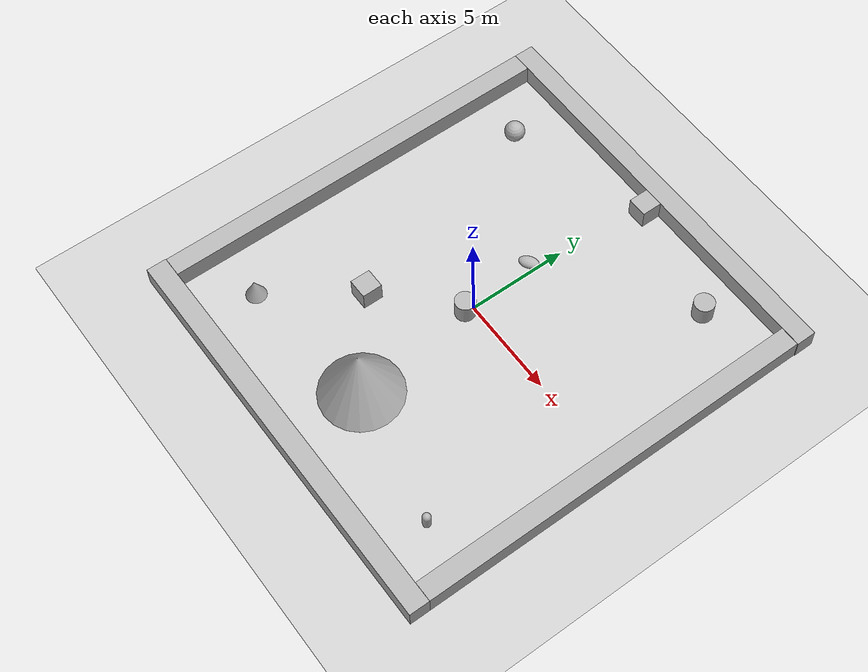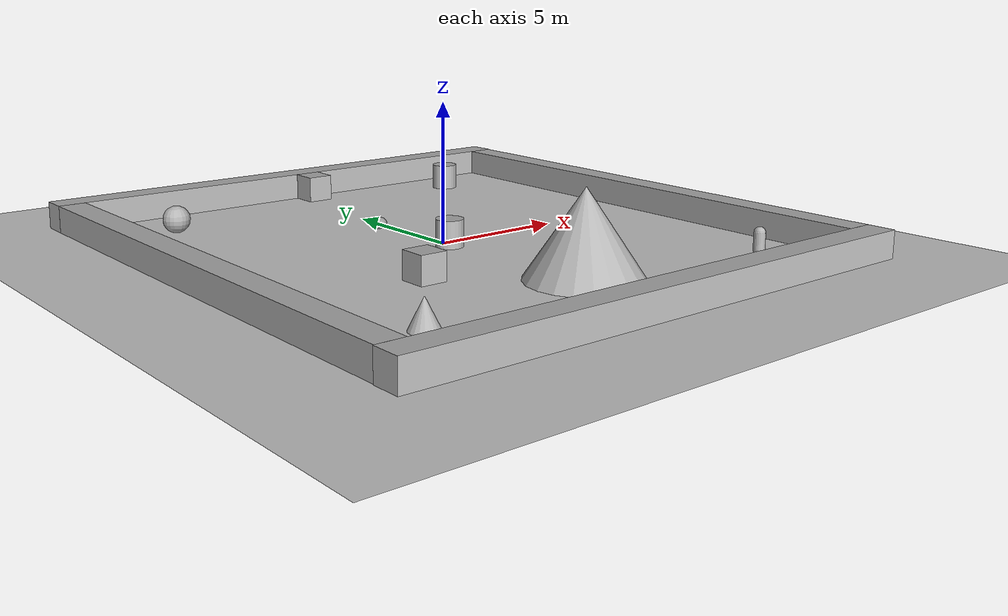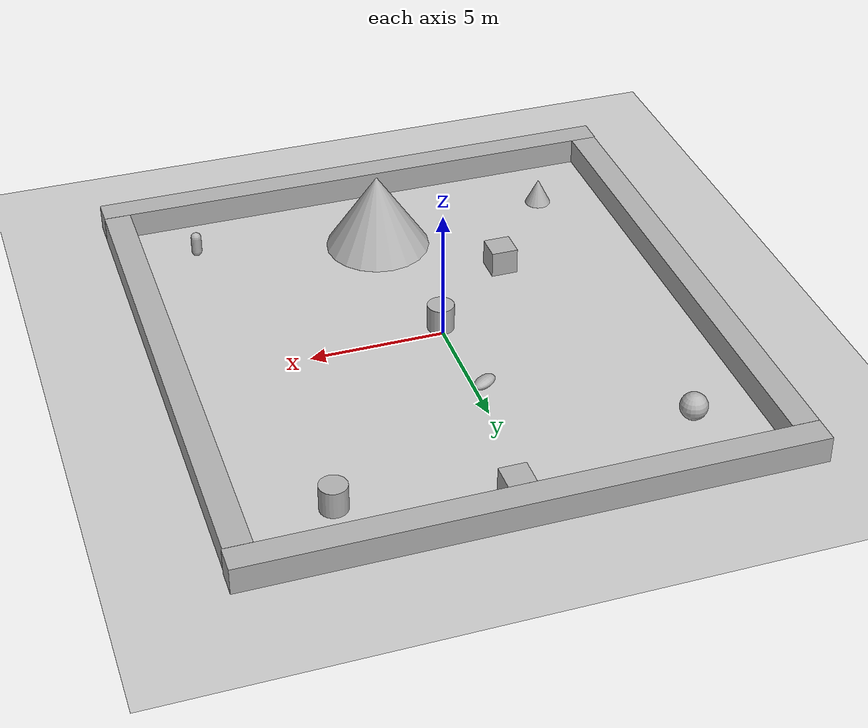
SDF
<sdf version="1.10">
 <world name="empty">
  <physics name="1ms" type="ignored">
   <max_step_size>0.001</max_step_size>
   <real_time_factor>1</real_time_factor>
   <real_time_update_rate>1000</real_time_update_rate>
  </physics>
  <plugin name="gz::sim::systems::Physics" filename="gz-sim-physics-system"/>
  <plugin name="gz::sim::systems::UserCommands" filename="gz-sim-user-commands-system"/>
  <plugin name="gz::sim::systems::SceneBroadcaster" filename="gz-sim-scene-broadcaster-system"/>
  <plugin name="gz::sim::systems::Contact" filename="gz-sim-contact-system"/>
  <gravity>0 0 -9.8000000000000007</gravity>
  <magnetic_field>5.5644999999999998e-06 2.2875799999999999e-05 -4.2388400000000002e-05</magnetic_field>
  <atmosphere type="adiabatic"/>
  <scene>
   <ambient>0.400000006 0.400000006 0.400000006 1</ambient>
   <background>0.699999988 0.699999988 0.699999988 1</background>
   <shadows>true</shadows>
  </scene>
  <model name="ground_plane">
   <static>true</static>
   <link name="link">
    <collision name="collision">
     <geometry><plane><normal>0 0 1</normal><size>100 100</size></plane></geometry>
    </collision>
    <visual name="visual">
     <geometry><plane><normal>0 0 1</normal><size>100 100</size></plane></geometry>
     <material>
      <ambient>0.800000012 0.800000012 0.800000012 1</ambient>
      <diffuse>0.800000012 0.800000012 0.800000012 1</diffuse>
      <specular>0.800000012 0.800000012 0.800000012 1</specular>
     </material>
    </visual>
    <inertial>
     <mass>1</mass>
     <inertia><ixx>1</ixx><ixy>0</ixy><ixz>0</ixz><iyy>1</iyy><iyz>0</iyz><izz>1</izz></inertia>
    </inertial>
   </link>
  </model>
  <model name="box">
   <pose>-9.4594259993279639 -0.0053163772360237498 0.49999852382396759 4.0288390019511379e-09 -1.5472082900949406e-09 -5.4475404335707574e-07</pose>
   <link name="box_link">
    <inertial>
     <inertia><ixx>0.16666</ixx><ixy>0</ixy><ixz>0</ixz><iyy>0.16666</iyy><iyz>0</iyz><izz>0.16666</izz></inertia>
     <mass>1</mass>
    </inertial>
    <collision name="box_collision"><geometry><box><size>1 20 1</size></box></geometry></collision>
    <visual name="box_visual">
     <geometry><box><size>1 20 1</size></box></geometry>
     <material>
      <ambient>0.300000012 0.300000012 0.300000012 1</ambient>
      <diffuse>0.699999988 0.699999988 0.699999988 1</diffuse>
      <specular>1 1 1 1</specular>
     </material>
    </visual>
   </link>
   <static>false</static>
  </model>
  <model name="box_1">
   <pose>10.010098457361229 -0.024525592247611815 0.49999897929480902 -2.0738481794867046e-09 2.72677854319629e-11 -3.4293713487521837e-09</pose>
   <link name="box_link">
    <inertial>
     <inertia><ixx>0.16666</ixx><ixy>0</ixy><ixz>0</ixz><iyy>0.16666</iyy><iyz>0</iyz><izz>0.16666</izz></inertia>
     <mass>1</mass>
    </inertial>
    <collision name="box_collision"><geometry><box><size>1 20 1</size></box></geometry></collision>
    <visual name="box_visual">
     <geometry><box><size>1 20 1</size></box></geometry>
     <material>
      <ambient>0.300000012 0.300000012 0.300000012 1</ambient>
      <diffuse>0.699999988 0.699999988 0.699999988 1</diffuse>
      <specular>1 1 1 1</specular>
     </material>
    </visual>
   </link>
   <static>false</static>
  </model>
  <model name="box_0">
   <pose>0.26008102139665007 -10.518118592279247 0.49999844939441079 2.2490173086819452e-13 -1.1038029025956847e-14 -0.00094045033893089118</pose>
   <link name="box_link">
    <inertial>
     <inertia><ixx>0.16666</ixx><ixy>0</ixy><ixz>0</ixz><iyy>0.16666</iyy><iyz>0</iyz><izz>0.16666</izz></inertia>
     <mass>1</mass>
    </inertial>
    <collision name="box_collision"><geometry><box><size>20.5 1 1</size></box></geometry></collision>
    <visual name="box_visual">
     <geometry><box><size>20.5 1 1</size></box></geometry>
     <material>
      <ambient>0.300000012 0.300000012 0.300000012 1</ambient>
      <diffuse>0.699999988 0.699999988 0.699999988 1</diffuse>
      <specular>1 1 1 1</specular>
     </material>
    </visual>
   </link>
   <static>false</static>
  </model>
  <model name="box_0_1">
   <pose>0.29227738479441112 10.49076605137866 0.49999844939440896 -9.0335127078765623e-10 -1.0995788963942517e-14 -0.00099974364828839452</pose>
   <link name="box_link">
    <inertial>
     <inertia><ixx>0.16666</ixx><ixy>0</ixy><ixz>0</ixz><iyy>0.16666</iyy><iyz>0</iyz><izz>0.16666</izz></inertia>
     <mass>1</mass>
    </inertial>
    <collision name="box_collision"><geometry><box><size>20.5 1 1</size></box></geometry></collision>
    <visual name="box_visual">
     <geometry><box><size>20.5 1 1</size></box></geometry>
     <material>
      <ambient>0.300000012 0.300000012 0.300000012 1</ambient>
      <diffuse>0.699999988 0.699999988 0.699999988 1</diffuse>
      <specular>1 1 1 1</specular>
     </material>
    </visual>
   </link>
   <static>false</static>
  </model>
  <model name="sphere">
   <pose>-6.5892213179504981 7.3925532917590182 0.49999999980498194 0 0 0</pose>
   <link name="sphere_link">
    <inertial>
     <inertia>
      <ixx>0.10000000000000001</ixx>
      <ixy>0</ixy>
      <ixz>0</ixz>
      <iyy>0.10000000000000001</iyy>
      <iyz>0</iyz>
      <izz>0.10000000000000001</izz>
     </inertia>
     <mass>1</mass>
    </inertial>
    <collision name="sphere_collision"><geometry><sphere><radius>0.5</radius></sphere></geometry></collision>
    <visual name="sphere_visual">
     <geometry><sphere><radius>0.5</radius></sphere></geometry>
     <material>
      <ambient>0.300000012 0.300000012 0.300000012 1</ambient>
      <diffuse>0.699999988 0.699999988 0.699999988 1</diffuse>
      <specular>1 1 1 1</specular>
     </material>
    </visual>
   </link>
   <static>false</static>
  </model>
  <model name="cone">
   <pose>-6.5174929755130862 -7.4783430358007701 0.49999999992120586 2.2548609712748548e-12 -8.4123610005861741e-10 1.6328675435844686e-17</pose>
   <link name="cone_link">
    <inertial>
     <inertia>
      <ixx>0.074999999999999997</ixx>
      <ixy>0</ixy>
      <ixz>0</ixz>
      <iyy>0.074999999999999997</iyy>
      <iyz>0</iyz>
      <izz>0.074999999999999997</izz>
     </inertia>
     <mass>1</mass>
    </inertial>
    <collision name="cone_collision">
     <geometry><cone><radius>0.5</radius><length>1</length></cone></geometry>
    </collision>
    <visual name="cone_visual">
     <geometry><cone><radius>0.5</radius><length>1</length></cone></geometry>
     <material>
      <ambient>0.300000012 0.300000012 0.300000012 1</ambient>
      <diffuse>0.699999988 0.699999988 0.699999988 1</diffuse>
      <specular>1 1 1 1</specular>
     </material>
    </visual>
   </link>
   <static>false</static>
  </model>
  <model name="cylinder">
   <pose>6.4271793365478516 8.1085596084594727 0.49999943207967634 5.637330763272949e-20 -1.3039700259625462e-23 -8.9682109002058168e-21</pose>
   <link name="cylinder_link">
    <inertial>
     <inertia>
      <ixx>0.14580000000000001</ixx>
      <ixy>0</ixy>
      <ixz>0</ixz>
      <iyy>0.14580000000000001</iyy>
      <iyz>0</iyz>
      <izz>0.125</izz>
     </inertia>
     <mass>1</mass>
    </inertial>
    <collision name="cylinder_collision">
     <geometry><cylinder><radius>0.5</radius><length>1</length></cylinder></geometry>
    </collision>
    <visual name="cylinder_visual">
     <geometry><cylinder><radius>0.5</radius><length>1</length></cylinder></geometry>
     <material>
      <ambient>0.300000012 0.300000012 0.300000012 1</ambient>
      <diffuse>0.699999988 0.699999988 0.699999988 1</diffuse>
      <specular>1 1 1 1</specular>
     </material>
    </visual>
   </link>
   <static>false</static>
  </model>
  <model name="capsule">
   <pose>7.3778877525841295 -7.9319856891186049 0.49999999980498194 0 0 0</pose>
   <link name="capsule_link">
    <inertial>
     <inertia>
      <ixx>0.074153999999999998</ixx>
      <ixy>0</ixy>
      <ixz>0</ixz>
      <iyy>0.074153999999999998</iyy>
      <iyz>0</iyz>
      <izz>0.018769000000000001</izz>
     </inertia>
     <mass>1</mass>
    </inertial>
    <collision name="capsule_collision">
     <geometry>
      <capsule><radius>0.20000000000000001</radius><length>0.59999999999999998</length></capsule>
     </geometry>
    </collision>
    <visual name="capsule_visual">
     <geometry>
      <capsule><radius>0.20000000000000001</radius><length>0.59999999999999998</length></capsule>
     </geometry>
     <material>
      <ambient>0.300000012 0.300000012 0.300000012 1</ambient>
      <diffuse>0.699999988 0.699999988 0.699999988 1</diffuse>
      <specular>1 1 1 1</specular>
     </material>
    </visual>
   </link>
   <static>false</static>
  </model>
  <model name="ellipsoid">
   <pose>-0.37535446460833466 3.4595779310280128 0.18666843664969404 1.5707963026509419 -1.3774878080370925 -0.97946978769885318</pose>
   <link name="ellipsoid_link">
    <inertial>
     <inertia>
      <ixx>0.068000000000000005</ixx>
      <ixy>0</ixy>
      <ixz>0</ixz>
      <iyy>0.058000000000000003</iyy>
      <iyz>0</iyz>
      <izz>0.025999999999999999</izz>
     </inertia>
     <mass>1</mass>
    </inertial>
    <collision name="ellipsoid_collision">
     <geometry><ellipsoid><radii>0.20000000000000001 0.29999999999999999 0.5</radii></ellipsoid></geometry>
    </collision>
    <visual name="ellipsoid_visual">
     <geometry><ellipsoid><radii>0.20000000000000001 0.29999999999999999 0.5</radii></ellipsoid></geometry>
     <material>
      <ambient>0.300000012 0.300000012 0.300000012 1</ambient>
      <diffuse>0.699999988 0.699999988 0.699999988 1</diffuse>
      <specular>1 1 1 1</specular>
     </material>
    </visual>
   </link>
   <static>false</static>
  </model>
  <model name="box_2">
   <pose>-3.4584967584220525 -3.4541447679650936 0.49999999980497606 1.0048033485058014e-21 -2.4640853465547739e-21 -3.9210766489770922e-22</pose>
   <link name="box_link">
    <inertial>
     <inertia><ixx>0.16666</ixx><ixy>0</ixy><ixz>0</ixz><iyy>0.16666</iyy><iyz>0</iyz><izz>0.16666</izz></inertia>
     <mass>1</mass>
    </inertial>
    <collision name="box_collision"><geometry><box><size>1 1 1</size></box></geometry></collision>
    <visual name="box_visual">
     <geometry><box><size>1 1 1</size></box></geometry>
     <material>
      <ambient>0.300000012 0.300000012 0.300000012 1</ambient>
      <diffuse>0.699999988 0.699999988 0.699999988 1</diffuse>
      <specular>1 1 1 1</specular>
     </material>
    </visual>
   </link>
   <static>false</static>
  </model>
  <model name="cone_0">
   <pose>0.51076106992487724 -6.5196817732444465 1.4999999955947525 6.4030309696360008e-08 -7.4285782256625212e-08 -6.4222811573632845e-09</pose>
   <link name="cone_link">
    <inertial>
     <inertia>
      <ixx>0.074999999999999997</ixx>
      <ixy>0</ixy>
      <ixz>0</ixz>
      <iyy>0.074999999999999997</iyy>
      <iyz>0</iyz>
      <izz>0.074999999999999997</izz>
     </inertia>
     <mass>1</mass>
    </inertial>
    <collision name="cone_collision">
     <geometry><cone><radius>2</radius><length>3</length></cone></geometry>
    </collision>
    <visual name="cone_visual">
     <geometry><cone><radius>2</radius><length>3</length></cone></geometry>
     <material>
      <ambient>0.300000012 0.300000012 0.300000012 1</ambient>
      <diffuse>0.699999988 0.699999988 0.699999988 1</diffuse>
      <specular>1 1 1 1</specular>
     </material>
    </visual>
   </link>
   <static>false</static>
  </model>
  <model name="box_3">
   <pose>0.63402688609417412 9.4899248073714411 0.49999999020360719 1.2485760797038647e-08 -2.5236880560320457e-11 4.5320961599312294e-07</pose>
   <link name="box_link">
    <inertial>
     <inertia><ixx>0.16666</ixx><ixy>0</ixy><ixz>0</ixz><iyy>0.16666</iyy><iyz>0</iyz><izz>0.16666</izz></inertia>
     <mass>1</mass>
    </inertial>
    <collision name="box_collision"><geometry><box><size>1 1 1</size></box></geometry></collision>
    <visual name="box_visual">
     <geometry><box><size>1 1 1</size></box></geometry>
     <material>
      <ambient>0.300000012 0.300000012 0.300000012 1</ambient>
      <diffuse>0.699999988 0.699999988 0.699999988 1</diffuse>
      <specular>1 1 1 1</specular>
     </material>
    </visual>
   </link>
   <static>false</static>
  </model>
  <model name="cylinder_0">
   <pose>-0.053231906650426986 -0.42149472638647867 0.49999942638036005 -3.5327271630467271e-19 -7.8384900364141283e-21 1.1271787626421698e-20</pose>
   <link name="cylinder_link">
    <inertial>
     <inertia>
      <ixx>0.14580000000000001</ixx>
      <ixy>0</ixy>
      <ixz>0</ixz>
      <iyy>0.14580000000000001</iyy>
      <iyz>0</iyz>
      <izz>0.125</izz>
     </inertia>
     <mass>1</mass>
    </inertial>
    <collision name="cylinder_collision">
     <geometry><cylinder><radius>0.5</radius><length>1</length></cylinder></geometry>
    </collision>
    <visual name="cylinder_visual">
     <geometry><cylinder><radius>0.5</radius><length>1</length></cylinder></geometry>
     <material>
      <ambient>0.300000012 0.300000012 0.300000012 1</ambient>
      <diffuse>0.699999988 0.699999988 0.699999988 1</diffuse>
      <specular>1 1 1 1</specular>
     </material>
    </visual>
   </link>
   <static>false</static>
  </model>
  <light name="sun" type="directional">
   <pose>0 0 10 0 0 0</pose>
   <intensity>1</intensity>
   <direction>-0.5 0.10000000000000001 -0.90000000000000002</direction>
   <diffuse>0.800000012 0.800000012 0.800000012 1</diffuse>
   <specular>0.200000003 0.200000003 0.200000003 1</specular>
   <attenuation>
    <range>1000</range>
    <linear>0.01</linear>
    <constant>0.90000000000000002</constant>
    <quadratic>0.001</quadratic>
   </attenuation>
   <spot><inner_angle>0</inner_angle><outer_angle>0</outer_angle><falloff>0</falloff></spot>
  </light>
 </world>
</sdf>
